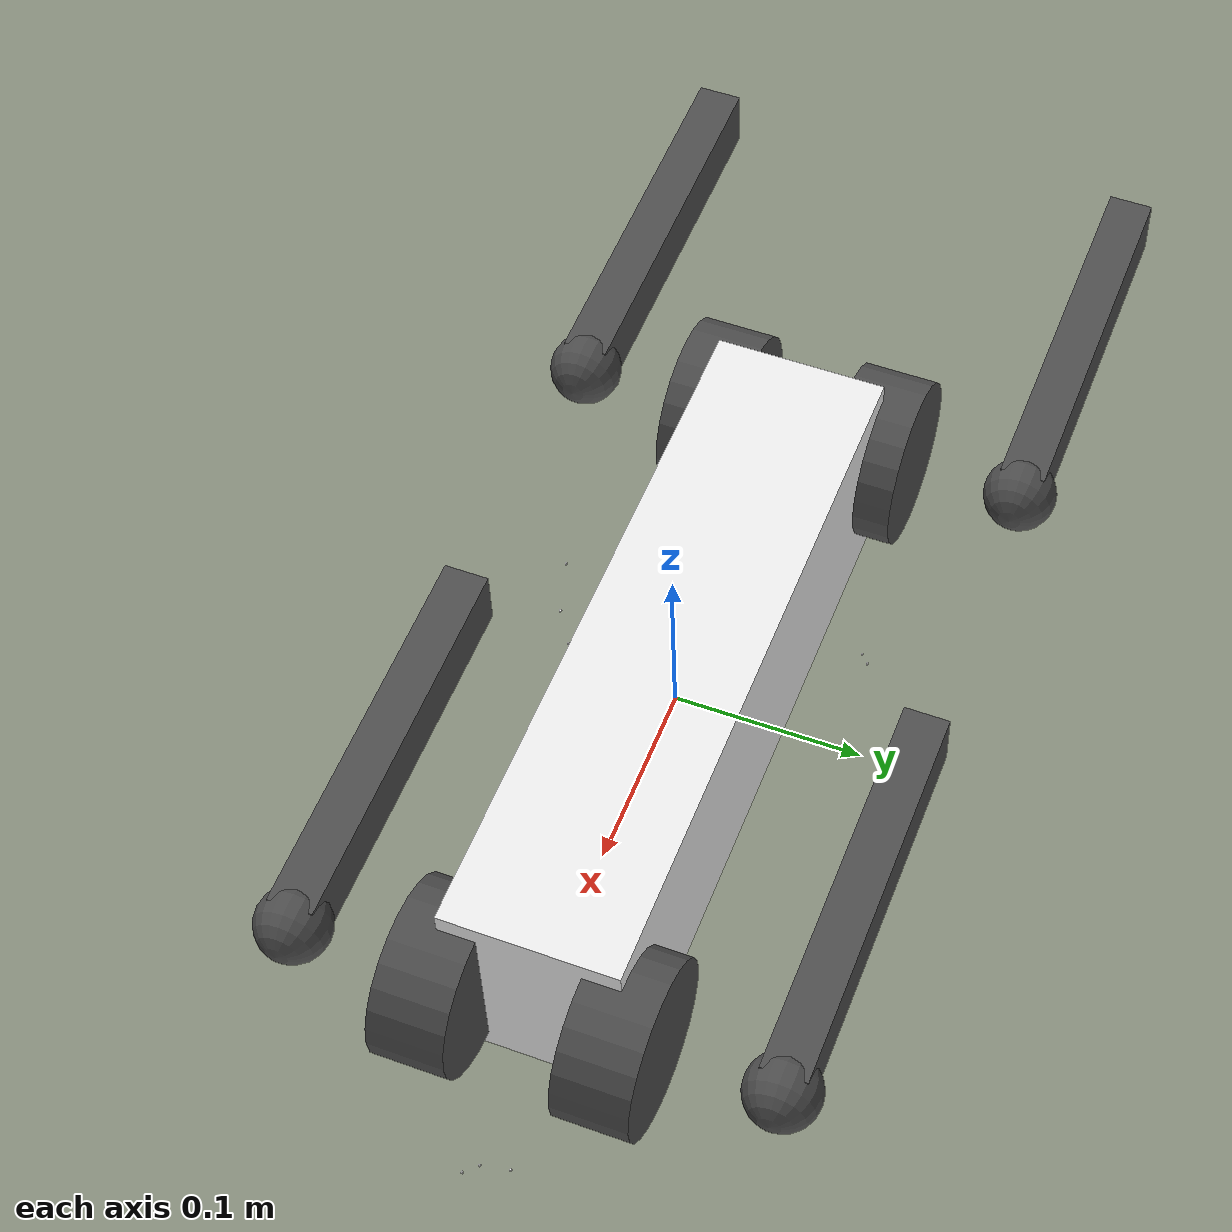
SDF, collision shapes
<sdf version='1.6'>
  <model name='go1_description'>
    <link name='body'>
      <pose frame=''>0 0 0 0 -0 0</pose>
      <inertial>
        <pose frame=''>0.022293 0.001987 -0.000501 0 -0 0</pose>
        <mass>5.20508</mass>
        <inertia>
          <ixx>0.0169483</ixx>
          <ixy>0.000460972</ixy>
          <ixz>0.000236597</ixz>
          <iyy>0.0657188</iyy>
          <iyz>3.62889e-05</iyz>
          <izz>0.0743887</izz>
        </inertia>
      </inertial>
      <collision name='body_collision_collision'>
        <pose frame=''>0 0 0 0 -0 0</pose>
        <geometry>
          <box>
            <size>0.3762 0.0935 0.114</size>
          </box>
        </geometry>
        <surface>
          <contact>
            <ode/>
          </contact>
          <friction>
            <ode/>
          </friction>
        </surface>
      </collision>
      <collision name='body_fixed_joint_lump__camera_chin_collision_1'>
        <pose frame=''>0.2522 0.0125 -0.0436 3.14159 1.57079 3e-06</pose>
        <geometry>
          <box>
            <size>0.001 0.001 0.001</size>
          </box>
        </geometry>
        <surface>
          <contact>
            <ode/>
          </contact>
          <friction>
            <ode/>
          </friction>
        </surface>
      </collision>
      <collision name='body_fixed_joint_lump__camera_face_collision_2'>
        <pose frame=''>0.2785 0.0125 0.0167 -3.14159 -0 0</pose>
        <geometry>
          <box>
            <size>0.001 0.001 0.001</size>
          </box>
        </geometry>
        <surface>
          <contact>
            <ode/>
          </contact>
          <friction>
            <ode/>
          </friction>
        </surface>
      </collision>
      <collision name='body_fixed_joint_lump__camera_left_collision_3'>
        <pose frame=''>-0.066 0.082 -0.0176 -3.14159 0.2618 1.5708</pose>
        <geometry>
          <box>
            <size>0.001 0.001 0.001</size>
          </box>
        </geometry>
        <surface>
          <contact>
            <ode/>
          </contact>
          <friction>
            <ode/>
          </friction>
        </surface>
      </collision>
      <collision name='body_fixed_joint_lump__camera_rearDown_collision_4'>
        <pose frame=''>-0.0825 0.0125 -0.04365 3.14159 1.57079 3e-06</pose>
        <geometry>
          <box>
            <size>0.001 0.001 0.001</size>
          </box>
        </geometry>
        <surface>
          <contact>
            <ode/>
          </contact>
          <friction>
            <ode/>
          </friction>
        </surface>
      </collision>
      <collision name='body_fixed_joint_lump__camera_right_collision_5'>
        <pose frame=''>-0.041 -0.082 -0.0176 -3.14159 0.2618 -1.5708</pose>
        <geometry>
          <box>
            <size>0.001 0.001 0.001</size>
          </box>
        </geometry>
        <surface>
          <contact>
            <ode/>
          </contact>
          <friction>
            <ode/>
          </friction>
        </surface>
      </collision>
      <collision name='body_fixed_joint_lump__imu_link_collision_6'>
        <pose frame=''>-0.01592 -0.06659 -0.00617 0 -0 0</pose>
        <geometry>
          <box>
            <size>0.001 0.001 0.001</size>
          </box>
        </geometry>
        <surface>
          <contact>
            <ode/>
          </contact>
          <friction>
            <ode>
              <mu>0.2</mu>
              <mu2>0.2</mu2>
            </ode>
          </friction>
        </surface>
      </collision>
      <collision name='body_fixed_joint_lump__ultraSound_face_collision_7'>
        <pose frame=''>0.2747 0 -0.0088 0 -0 0</pose>
        <geometry>
          <box>
            <size>0.001 0.001 0.001</size>
          </box>
        </geometry>
      </collision>
      <collision name='body_fixed_joint_lump__ultraSound_left_collision_8'>
        <pose frame=''>-0.0535 0.0826 0.00868 0 0.2618 1.5708</pose>
        <geometry>
          <box>
            <size>0.001 0.001 0.001</size>
          </box>
        </geometry>
      </collision>
      <collision name='body_fixed_joint_lump__ultraSound_right_collision_9'>
        <pose frame=''>-0.0535 -0.0826 0.00868 0 0.2618 -1.5708</pose>
        <geometry>
          <box>
            <size>0.001 0.001 0.001</size>
          </box>
        </geometry>
      </collision>
      <visual name='body_visual'>
        <pose frame=''>0 0 0 0 -0 0</pose>
        <geometry>
          <box>
            <size>0.001 0.001 0.001</size>
          </box>
        </geometry>
        <material>
          <script>
            <name>Gazebo/White</name>
            <uri>file://media/materials/scripts/gazebo.material</uri>
          </script>
        </material>
      </visual>
      <visual name='body_visual_visual_1'>
        <pose frame=''>0 0 0 0 -0 0</pose>
        <geometry>
          <mesh>
            <scale>1 1 1</scale>
            <uri>model://go1_description/meshes/trunk.dae</uri>
          </mesh>
        </geometry>
        <material>
          <script>
            <name>Gazebo/White</name>
            <uri>file://media/materials/scripts/gazebo.material</uri>
          </script>
        </material>
      </visual>
      <visual name='body_fixed_joint_lump__camera_chin_visual_2'>
        <pose frame=''>0.2522 0.0125 -0.0436 3.14159 1.57079 3e-06</pose>
        <geometry>
          <mesh>
            <scale>1 1 1</scale>
            <uri>model://go1_description/meshes/depthCamera.dae</uri>
          </mesh>
        </geometry>
        <material>
          <script>
            <uri>__default__</uri>
            <name>__default__</name>
          </script>
        </material>
      </visual>
      <visual name='body_fixed_joint_lump__camera_face_visual_3'>
        <pose frame=''>0.2785 0.0125 0.0167 -3.14159 -0 0</pose>
        <geometry>
          <mesh>
            <scale>1 1 1</scale>
            <uri>model://go1_description/meshes/depthCamera.dae</uri>
          </mesh>
        </geometry>
        <material>
          <script>
            <uri>__default__</uri>
            <name>__default__</name>
          </script>
        </material>
      </visual>
      <visual name='body_fixed_joint_lump__camera_left_visual_4'>
        <pose frame=''>-0.066 0.082 -0.0176 -3.14159 0.2618 1.5708</pose>
        <geometry>
          <mesh>
            <scale>1 1 1</scale>
            <uri>model://go1_description/meshes/depthCamera.dae</uri>
          </mesh>
        </geometry>
        <material>
          <script>
            <uri>__default__</uri>
            <name>__default__</name>
          </script>
        </material>
      </visual>
      <visual name='body_fixed_joint_lump__camera_rearDown_visual_5'>
        <pose frame=''>-0.0825 0.0125 -0.04365 3.14159 1.57079 3e-06</pose>
        <geometry>
          <mesh>
            <scale>1 1 1</scale>
            <uri>model://go1_description/meshes/depthCamera.dae</uri>
          </mesh>
        </geometry>
        <material>
          <script>
            <uri>__default__</uri>
            <name>__default__</name>
          </script>
        </material>
      </visual>
      <visual name='body_fixed_joint_lump__camera_right_visual_6'>
        <pose frame=''>-0.041 -0.082 -0.0176 -3.14159 0.2618 -1.5708</pose>
        <geometry>
          <mesh>
            <scale>1 1 1</scale>
            <uri>model://go1_description/meshes/depthCamera.dae</uri>
          </mesh>
        </geometry>
        <material>
          <script>
            <uri>__default__</uri>
            <name>__default__</name>
          </script>
        </material>
      </visual>
      <visual name='body_fixed_joint_lump__imu_link_visual_7'>
        <pose frame=''>-0.01592 -0.06659 -0.00617 0 -0 0</pose>
        <geometry>
          <box>
            <size>0.001 0.001 0.001</size>
          </box>
        </geometry>
        <material>
          <script>
            <name>Gazebo/Red</name>
            <uri>file://media/materials/scripts/gazebo.material</uri>
          </script>
        </material>
      </visual>
      <visual name='body_fixed_joint_lump__ultraSound_face_visual_8'>
        <pose frame=''>0.2747 0 -0.0088 0 -0 0</pose>
        <geometry>
          <mesh>
            <scale>1 1 1</scale>
            <uri>model://go1_description/meshes/ultraSound.dae</uri>
          </mesh>
        </geometry>
      </visual>
      <visual name='body_fixed_joint_lump__ultraSound_left_visual_9'>
        <pose frame=''>-0.0535 0.0826 0.00868 0 0.2618 1.5708</pose>
        <geometry>
          <mesh>
            <scale>1 1 1</scale>
            <uri>model://go1_description/meshes/ultraSound.dae</uri>
          </mesh>
        </geometry>
      </visual>
      <visual name='body_fixed_joint_lump__ultraSound_right_visual_10'>
        <pose frame=''>-0.0535 -0.0826 0.00868 0 0.2618 -1.5708</pose>
        <geometry>
          <mesh>
            <scale>1 1 1</scale>
            <uri>model://go1_description/meshes/ultraSound.dae</uri>
          </mesh>
        </geometry>
      </visual>
      <velocity_decay/>
      <velocity_decay/>
      <velocity_decay/>
      <sensor name='camera_chin_camera' type='depth'>
        <update_rate>16</update_rate>
        <camera name='__default__'>
          <horizontal_fov>2.094</horizontal_fov>
          <image>
            <width>928</width>
            <height>800</height>
            <format>R8G8B8</format>
          </image>
          <clip>
            <near>0.1</near>
            <far>5</far>
          </clip>
        </camera>
        <plugin name='camera_chin_controller' filename='libgazebo_ros_openni_kinect.so'>
          <baseline>0.025</baseline>
          <alwaysOn>1</alwaysOn>
          <updateRate>0.0</updateRate>
          <cameraName>camera_chin_ir</cameraName>
          <imageTopicName>/camera_chin/color/image_raw</imageTopicName>
          <cameraInfoTopicName>/camera_chin/color/camera_info</cameraInfoTopicName>
          <depthImageTopicName>/camera_chin/depth/image_raw</depthImageTopicName>
          <depthImageInfoTopicName>/camera_chin/depth/camera_info</depthImageInfoTopicName>
          <pointCloudTopicName>/cam2/point_cloud_chin</pointCloudTopicName>
          <frameName>camera_optical_chin</frameName>
          <pointCloudCutoff>0.1</pointCloudCutoff>
          <pointCloudCutoffMax>1.5</pointCloudCutoffMax>
          <distortionK1>0.0</distortionK1>
          <distortionK2>0.0</distortionK2>
          <distortionK3>0.0</distortionK3>
          <distortionT1>0.0</distortionT1>
          <distortionT2>0.0</distortionT2>
          <CxPrime>0</CxPrime>
          <Cx>0.0045</Cx>
          <Cy>0.0039</Cy>
          <focalLength>0</focalLength>
          <hackBaseline>0</hackBaseline>
        </plugin>
        <pose frame=''>0.2522 0.0125 -0.0436 3.14159 1.57079 3e-06</pose>
      </sensor>
      <velocity_decay/>
      <sensor name='camera_face_camera' type='depth'>
        <update_rate>16</update_rate>
        <camera name='__default__'>
          <horizontal_fov>2.094</horizontal_fov>
          <image>
            <width>928</width>
            <height>800</height>
            <format>R8G8B8</format>
          </image>
          <clip>
            <near>0.1</near>
            <far>5</far>
          </clip>
        </camera>
        <plugin name='camera_face_controller' filename='libgazebo_ros_openni_kinect.so'>
          <baseline>0.025</baseline>
          <alwaysOn>1</alwaysOn>
          <updateRate>0.0</updateRate>
          <cameraName>camera_face_ir</cameraName>
          <imageTopicName>/camera_face/color/image_raw</imageTopicName>
          <cameraInfoTopicName>/camera_face/color/camera_info</cameraInfoTopicName>
          <depthImageTopicName>/camera_face/depth/image_raw</depthImageTopicName>
          <depthImageInfoTopicName>/camera_face/depth/camera_info</depthImageInfoTopicName>
          <pointCloudTopicName>/cam1/point_cloud_face</pointCloudTopicName>
          <frameName>camera_optical_face</frameName>
          <pointCloudCutoff>0.1</pointCloudCutoff>
          <pointCloudCutoffMax>1.5</pointCloudCutoffMax>
          <distortionK1>0.0</distortionK1>
          <distortionK2>0.0</distortionK2>
          <distortionK3>0.0</distortionK3>
          <distortionT1>0.0</distortionT1>
          <distortionT2>0.0</distortionT2>
          <CxPrime>0</CxPrime>
          <Cx>0.0045</Cx>
          <Cy>0.0039</Cy>
          <focalLength>0</focalLength>
          <hackBaseline>0</hackBaseline>
        </plugin>
        <pose frame=''>0.2785 0.0125 0.0167 -3.14159 -0 0</pose>
      </sensor>
      <velocity_decay/>
      <sensor name='camera_left_camera' type='depth'>
        <update_rate>16</update_rate>
        <camera name='__default__'>
          <horizontal_fov>2.094</horizontal_fov>
          <image>
            <width>928</width>
            <height>800</height>
            <format>R8G8B8</format>
          </image>
          <clip>
            <near>0.1</near>
            <far>5</far>
          </clip>
        </camera>
        <plugin name='camera_left_controller' filename='libgazebo_ros_openni_kinect.so'>
          <baseline>0.025</baseline>
          <alwaysOn>1</alwaysOn>
          <updateRate>0.0</updateRate>
          <cameraName>camera_left_ir</cameraName>
          <imageTopicName>/camera_left/color/image_raw</imageTopicName>
          <cameraInfoTopicName>/camera_left/color/camera_info</cameraInfoTopicName>
          <depthImageTopicName>/camera_left/depth/image_raw</depthImageTopicName>
          <depthImageInfoTopicName>/camera_left/depth/camera_info</depthImageInfoTopicName>
          <pointCloudTopicName>/cam3/point_cloud_left</pointCloudTopicName>
          <frameName>camera_optical_left</frameName>
          <pointCloudCutoff>0.1</pointCloudCutoff>
          <pointCloudCutoffMax>1.5</pointCloudCutoffMax>
          <distortionK1>0.0</distortionK1>
          <distortionK2>0.0</distortionK2>
          <distortionK3>0.0</distortionK3>
          <distortionT1>0.0</distortionT1>
          <distortionT2>0.0</distortionT2>
          <CxPrime>0</CxPrime>
          <Cx>0.0045</Cx>
          <Cy>0.0039</Cy>
          <focalLength>0</focalLength>
          <hackBaseline>0</hackBaseline>
        </plugin>
        <pose frame=''>-0.066 0.082 -0.0176 -3.14159 0.2618 1.5708</pose>
      </sensor>
      <velocity_decay/>
      <sensor name='camera_rearDown_camera' type='depth'>
        <update_rate>16</update_rate>
        <camera name='__default__'>
          <horizontal_fov>2.094</horizontal_fov>
          <image>
            <width>928</width>
            <height>800</height>
            <format>R8G8B8</format>
          </image>
          <clip>
            <near>0.1</near>
            <far>5</far>
          </clip>
        </camera>
        <plugin name='camera_rearDown_controller' filename='libgazebo_ros_openni_kinect.so'>
          <baseline>0.025</baseline>
          <alwaysOn>1</alwaysOn>
          <updateRate>0.0</updateRate>
          <cameraName>camera_rearDown_ir</cameraName>
          <imageTopicName>/camera_rearDown/color/image_raw</imageTopicName>
          <cameraInfoTopicName>/camera_rearDown/color/camera_info</cameraInfoTopicName>
          <depthImageTopicName>/camera_rearDown/depth/image_raw</depthImageTopicName>
          <depthImageInfoTopicName>/camera_rearDown/depth/camera_info</depthImageInfoTopicName>
          <pointCloudTopicName>/cam5/point_cloud_rearDown</pointCloudTopicName>
          <frameName>camera_optical_rearDown</frameName>
          <pointCloudCutoff>0.1</pointCloudCutoff>
          <pointCloudCutoffMax>1.5</pointCloudCutoffMax>
          <distortionK1>0.0</distortionK1>
          <distortionK2>0.0</distortionK2>
          <distortionK3>0.0</distortionK3>
          <distortionT1>0.0</distortionT1>
          <distortionT2>0.0</distortionT2>
          <CxPrime>0</CxPrime>
          <Cx>0.0045</Cx>
          <Cy>0.0039</Cy>
          <focalLength>0</focalLength>
          <hackBaseline>0</hackBaseline>
        </plugin>
        <pose frame=''>-0.0825 0.0125 -0.04365 3.14159 1.57079 3e-06</pose>
      </sensor>
      <velocity_decay/>
      <sensor name='camera_right_camera' type='depth'>
        <update_rate>16</update_rate>
        <camera name='__default__'>
          <horizontal_fov>2.094</horizontal_fov>
          <image>
            <width>928</width>
            <height>800</height>
            <format>R8G8B8</format>
          </image>
          <clip>
            <near>0.1</near>
            <far>5</far>
          </clip>
        </camera>
        <plugin name='camera_right_controller' filename='libgazebo_ros_openni_kinect.so'>
          <baseline>0.025</baseline>
          <alwaysOn>1</alwaysOn>
          <updateRate>0.0</updateRate>
          <cameraName>camera_right_ir</cameraName>
          <imageTopicName>/camera_right/color/image_raw</imageTopicName>
          <cameraInfoTopicName>/camera_right/color/camera_info</cameraInfoTopicName>
          <depthImageTopicName>/camera_right/depth/image_raw</depthImageTopicName>
          <depthImageInfoTopicName>/camera_right/depth/camera_info</depthImageInfoTopicName>
          <pointCloudTopicName>/cam4/point_cloud_right</pointCloudTopicName>
          <frameName>camera_optical_right</frameName>
          <pointCloudCutoff>0.1</pointCloudCutoff>
          <pointCloudCutoffMax>1.5</pointCloudCutoffMax>
          <distortionK1>0.0</distortionK1>
          <distortionK2>0.0</distortionK2>
          <distortionK3>0.0</distortionK3>
          <distortionT1>0.0</distortionT1>
          <distortionT2>0.0</distortionT2>
          <CxPrime>0</CxPrime>
          <Cx>0.0045</Cx>
          <Cy>0.0039</Cy>
          <focalLength>0</focalLength>
          <hackBaseline>0</hackBaseline>
        </plugin>
        <pose frame=''>-0.041 -0.082 -0.0176 -3.14159 0.2618 -1.5708</pose>
      </sensor>
      <velocity_decay/>
      <gravity>1</gravity>
      <sensor name='imu_sensor' type='imu'>
        <always_on>1</always_on>
        <update_rate>1000</update_rate>
        <visualize>1</visualize>
        <topic>__default_topic__</topic>
        <plugin name='imu_plugin' filename='libgazebo_ros_imu_sensor.so'>
          <topicName>trunk_imu</topicName>
          <bodyName>imu_link</bodyName>
          <updateRateHZ>1000.0</updateRateHZ>
          <gaussianNoise>0.0</gaussianNoise>
          <xyzOffset>0 0 0</xyzOffset>
          <rpyOffset>0 0 0</rpyOffset>
          <frameName>imu_link</frameName>
        </plugin>
        <pose frame=''>-0.01592 -0.06659 -0.00617 0 -0 0</pose>
      </sensor>
      <gravity>1</gravity>
      <velocity_decay/>
    </link>
    <link name='hip2'>
      <pose frame=''>0.1881 -0.04675 0 0 -0 0</pose>
      <inertial>
        <pose frame=''>-0.00541 0.00074 6e-06 0 -0 0</pose>
        <mass>0.591</mass>
        <inertia>
          <ixx>0.000374268</ixx>
          <ixy>-3.68444e-05</ixy>
          <ixz>-9.86754e-07</ixz>
          <iyy>0.000635924</iyy>
          <iyz>1.17289e-06</iyz>
          <izz>0.000457647</izz>
        </inertia>
      </inertial>
      <collision name='hip2_collision_collision'>
        <pose frame=''>0 0 0 1.5708 -0 0</pose>
        <geometry>
          <cylinder>
            <length>0.04</length>
            <radius>0.046</radius>
          </cylinder>
        </geometry>
        <surface>
          <contact>
            <ode/>
          </contact>
          <friction>
            <ode>
              <mu>0.2</mu>
              <mu2>0.2</mu2>
            </ode>
          </friction>
        </surface>
      </collision>
      <visual name='hip2_visual_visual'>
        <pose frame=''>0 0 0 -3.14159 -0 0</pose>
        <geometry>
          <mesh>
            <scale>1 1 1</scale>
            <uri>model://go1_description/meshes/hip.dae</uri>
          </mesh>
        </geometry>
        <material>
          <script>
            <name>Gazebo/DarkGrey</name>
            <uri>file://media/materials/scripts/gazebo.material</uri>
          </script>
        </material>
      </visual>
      <gravity>1</gravity>
      <velocity_decay/>
    </link>
    <joint name='10' type='revolute'>
      <child>hip2</child>
      <parent>body</parent>
      <axis>
        <xyz>1 0 0</xyz>
        <limit>
          <lower>-1.0472</lower>
          <upper>1.0472</upper>
          <effort>23.7</effort>
          <velocity>30.1</velocity>
        </limit>
        <dynamics>
          <damping>0.01</damping>
          <friction>0.2</friction>
          <spring_reference>0</spring_reference>
          <spring_stiffness>0</spring_stiffness>
        </dynamics>
        <use_parent_model_frame>0</use_parent_model_frame>
      </axis>
    </joint>
    <link name='upper2'>
      <pose frame=''>0.1881 -0.12675 0 3.14159 1.57079 3.14159</pose>
      <inertial>
        <pose frame=''>-0.003468 0.018947 -0.032736 0 -0 0</pose>
        <mass>0.92</mass>
        <inertia>
          <ixx>0.00585156</ixx>
          <ixy>-1.78328e-06</ixy>
          <ixz>0.000328291</ixz>
          <iyy>0.00559616</iyy>
          <iyz>-2.14307e-05</iyz>
          <izz>0.00107157</izz>
        </inertia>
      </inertial>
      <collision name='upper2_collision_collision'>
        <pose frame=''>0 0 -0.1065 3.14159 1.57079 3.14159</pose>
        <geometry>
          <box>
            <size>0.213 0.0245 0.034</size>
          </box>
        </geometry>
        <surface>
          <contact>
            <ode>
              <kp>1e+06</kp>
              <kd>1</kd>
            </ode>
          </contact>
          <friction>
            <ode>
              <mu>0.2</mu>
              <mu2>0.2</mu2>
            </ode>
          </friction>
        </surface>
      </collision>
      <visual name='upper2_visual_visual'>
        <pose frame=''>0 0 0 0 -0 0</pose>
        <geometry>
          <mesh>
            <scale>1 1 1</scale>
            <uri>model://go1_description/meshes/thigh_mirror.dae</uri>
          </mesh>
        </geometry>
        <material>
          <script>
            <name>Gazebo/DarkGrey</name>
            <uri>file://media/materials/scripts/gazebo.material</uri>
          </script>
        </material>
      </visual>
      <gravity>1</gravity>
      <velocity_decay/>
      <self_collide>0</self_collide>
    </link>
    <joint name='4' type='revolute'>
      <child>upper2</child>
      <parent>hip2</parent>
      <axis>
        <xyz>0 -1 0</xyz>
        <limit>
          <lower>-6.28319</lower>
          <upper>6.28319</upper>
          <effort>23.7</effort>
          <velocity>30.1</velocity>
        </limit>
        <dynamics>
          <damping>0.01</damping>
          <friction>0.2</friction>
          <spring_reference>0</spring_reference>
          <spring_stiffness>0</spring_stiffness>
        </dynamics>
        <use_parent_model_frame>0</use_parent_model_frame>
      </axis>
    </joint>
    <link name='lower2'>
      <pose frame=''>-0.0249 -0.12675 -0 3.14159 -1.57079 3.14159</pose>
      <inertial>
        <pose frame=''>0.006286 0.001307 -0.122269 0 -0 0</pose>
        <mass>0.131</mass>
        <inertia>
          <ixx>0.00293919</ixx>
          <ixy>1.4409e-06</ixy>
          <ixz>-0.00010536</ixz>
          <iyy>0.00295577</iyy>
          <iyz>-2.43978e-05</iyz>
          <izz>3.02734e-05</izz>
        </inertia>
      </inertial>
      <collision name='lower2_collision_collision'>
        <pose frame=''>0 0 -0.1065 3.14159 1.57079 3.14159</pose>
        <geometry>
          <box>
            <size>0.213 0.016 0.016</size>
          </box>
        </geometry>
        <surface>
          <contact>
            <ode/>
          </contact>
          <friction>
            <ode>
              <mu>0.2</mu>
              <mu2>0.2</mu2>
            </ode>
          </friction>
        </surface>
      </collision>
      <visual name='lower2_visual_visual'>
        <pose frame=''>0 0 0 0 -0 0</pose>
        <geometry>
          <mesh>
            <scale>1 1 1</scale>
            <uri>model://go1_description/meshes/calf.dae</uri>
          </mesh>
        </geometry>
        <material>
          <script>
            <uri>__default__</uri>
            <name>__default__</name>
          </script>
        </material>
      </visual>
      <gravity>1</gravity>
      <velocity_decay/>
      <self_collide>0</self_collide>
    </link>
    <joint name='5' type='revolute'>
      <child>lower2</child>
      <parent>upper2</parent>
      <axis>
        <xyz>0 1 0</xyz>
        <limit>
          <lower>-6.28319</lower>
          <upper>6.28319</upper>
          <effort>23.7</effort>
          <velocity>30.1</velocity>
        </limit>
        <dynamics>
          <damping>0.01</damping>
          <friction>0.2</friction>
          <spring_reference>0</spring_reference>
          <spring_stiffness>0</spring_stiffness>
        </dynamics>
        <use_parent_model_frame>0</use_parent_model_frame>
      </axis>
    </joint>
    <link name='toe2'>
      <pose frame=''>0.1881 -0.12675 0 3.14159 -1.57079 3.14159</pose>
      <inertial>
        <pose frame=''>0 0 0 0 -0 0</pose>
        <mass>0.06</mass>
        <inertia>
          <ixx>9.6e-06</ixx>
          <ixy>0</ixy>
          <ixz>0</ixz>
          <iyy>9.6e-06</iyy>
          <iyz>0</iyz>
          <izz>9.6e-06</izz>
        </inertia>
      </inertial>
      <collision name='toe2_collision_collision'>
        <pose frame=''>0 0 0 0 -0 0</pose>
        <geometry>
          <sphere>
            <radius>0.02</radius>
          </sphere>
        </geometry>
        <surface>
          <contact>
            <ode>
              <kp>1e+06</kp>
              <kd>1</kd>
            </ode>
          </contact>
          <friction>
            <ode>
              <mu>0.6</mu>
              <mu2>0.6</mu2>
            </ode>
          </friction>
        </surface>
      </collision>
      <visual name='toe2_visual_visual'>
        <pose frame=''>0 0 0 0 -0 0</pose>
        <geometry>
          <sphere>
            <radius>0.01</radius>
          </sphere>
        </geometry>
        <material>
          <script>
            <name>Gazebo/DarkGrey</name>
            <uri>file://media/materials/scripts/gazebo.material</uri>
          </script>
        </material>
      </visual>
      <velocity_decay/>
      <sensor name='toe2_contact' type='contact'>
        <plugin name='toe2_plugin' filename='libgazebo_ros_bumper.so'>
          <alwaysOn>1</alwaysOn>
          <updateRate>500</updateRate>
          <bumperTopicName>gazebo/toe2_contact_state</bumperTopicName>
          <frameName>world</frameName>
        </plugin>
        <contact>
          <collision>toe2_collision</collision>
          <topic>__default_topic__</topic>
        </contact>
        <update_rate>500</update_rate>
      </sensor>
      <gravity>1</gravity>
      <velocity_decay/>
      <self_collide>0</self_collide>
    </link>
    <joint name='jtoe2' type='fixed'>
      <child>toe2</child>
      <parent>lower2</parent>
      <axis>
        <dynamics>
          <spring_reference>0</spring_reference>
          <spring_stiffness>0</spring_stiffness>
        </dynamics>
        <xyz>0 0 1</xyz>
        <use_parent_model_frame>0</use_parent_model_frame>
        <limit>
          <lower>-1e+16</lower>
          <upper>1e+16</upper>
        </limit>
      </axis>
      <physics>
        <ode>
          <limit>
            <cfm>0</cfm>
            <erp>0.2</erp>
          </limit>
        </ode>
      </physics>
    </joint>
    <link name='hip3'>
      <pose frame=''>-0.1881 -0.04675 0 0 -0 0</pose>
      <inertial>
        <pose frame=''>0.00541 0.00074 6e-06 0 -0 0</pose>
        <mass>0.591</mass>
        <inertia>
          <ixx>0.000374268</ixx>
          <ixy>3.68444e-05</ixy>
          <ixz>9.86754e-07</ixz>
          <iyy>0.000635924</iyy>
          <iyz>1.17289e-06</iyz>
          <izz>0.000457647</izz>
        </inertia>
      </inertial>
      <collision name='hip3_collision_collision'>
        <pose frame=''>0 0 0 1.5708 -0 0</pose>
        <geometry>
          <cylinder>
            <length>0.04</length>
            <radius>0.046</radius>
          </cylinder>
        </geometry>
        <surface>
          <contact>
            <ode/>
          </contact>
          <friction>
            <ode>
              <mu>0.2</mu>
              <mu2>0.2</mu2>
            </ode>
          </friction>
        </surface>
      </collision>
      <visual name='hip3_visual_visual'>
        <pose frame=''>0 0 0 0 -0 3.14159</pose>
        <geometry>
          <mesh>
            <scale>1 1 1</scale>
            <uri>model://go1_description/meshes/hip.dae</uri>
          </mesh>
        </geometry>
        <material>
          <script>
            <name>Gazebo/DarkGrey</name>
            <uri>file://media/materials/scripts/gazebo.material</uri>
          </script>
        </material>
      </visual>
      <gravity>1</gravity>
      <velocity_decay/>
    </link>
    <joint name='11' type='revolute'>
      <child>hip3</child>
      <parent>body</parent>
      <axis>
        <xyz>1 0 0</xyz>
        <limit>
          <lower>-1.0472</lower>
          <upper>1.0472</upper>
          <effort>23.7</effort>
          <velocity>30.1</velocity>
        </limit>
        <dynamics>
          <damping>0.01</damping>
          <friction>0.2</friction>
          <spring_reference>0</spring_reference>
          <spring_stiffness>0</spring_stiffness>
        </dynamics>
        <use_parent_model_frame>0</use_parent_model_frame>
      </axis>
    </joint>
    <link name='upper3'>
      <pose frame=''>-0.1881 -0.12675 0 3.14159 1.57079 3.14159</pose>
      <inertial>
        <pose frame=''>-0.003468 0.018947 -0.032736 0 -0 0</pose>
        <mass>0.92</mass>
        <inertia>
          <ixx>0.00585156</ixx>
          <ixy>-1.78328e-06</ixy>
          <ixz>0.000328291</ixz>
          <iyy>0.00559616</iyy>
          <iyz>-2.14307e-05</iyz>
          <izz>0.00107157</izz>
        </inertia>
      </inertial>
      <collision name='upper3_collision_collision'>
        <pose frame=''>0 0 -0.1065 3.14159 1.57079 3.14159</pose>
        <geometry>
          <box>
            <size>0.213 0.0245 0.034</size>
          </box>
        </geometry>
        <surface>
          <contact>
            <ode>
              <kp>1e+06</kp>
              <kd>1</kd>
            </ode>
          </contact>
          <friction>
            <ode>
              <mu>0.2</mu>
              <mu2>0.2</mu2>
            </ode>
          </friction>
        </surface>
      </collision>
      <visual name='upper3_visual_visual'>
        <pose frame=''>0 0 0 0 -0 0</pose>
        <geometry>
          <mesh>
            <scale>1 1 1</scale>
            <uri>model://go1_description/meshes/thigh_mirror.dae</uri>
          </mesh>
        </geometry>
        <material>
          <script>
            <name>Gazebo/DarkGrey</name>
            <uri>file://media/materials/scripts/gazebo.material</uri>
          </script>
        </material>
      </visual>
      <gravity>1</gravity>
      <velocity_decay/>
      <self_collide>0</self_collide>
    </link>
    <joint name='6' type='revolute'>
      <child>upper3</child>
      <parent>hip3</parent>
      <axis>
        <xyz>0 -1 0</xyz>
        <limit>
          <lower>-6.28319</lower>
          <upper>6.28319</upper>
          <effort>23.7</effort>
          <velocity>30.1</velocity>
        </limit>
        <dynamics>
          <damping>0.01</damping>
          <friction>0.2</friction>
          <spring_reference>0</spring_reference>
          <spring_stiffness>0</spring_stiffness>
        </dynamics>
        <use_parent_model_frame>0</use_parent_model_frame>
      </axis>
    </joint>
    <link name='lower3'>
      <pose frame=''>-0.4011 -0.12675 -0 3.14159 -1.57079 3.14159</pose>
      <inertial>
        <pose frame=''>0.006286 0.001307 -0.122269 0 -0 0</pose>
        <mass>0.131</mass>
        <inertia>
          <ixx>0.00293919</ixx>
          <ixy>1.4409e-06</ixy>
          <ixz>-0.00010536</ixz>
          <iyy>0.00295577</iyy>
          <iyz>-2.43978e-05</iyz>
          <izz>3.02734e-05</izz>
        </inertia>
      </inertial>
      <collision name='lower3_collision_collision'>
        <pose frame=''>0 0 -0.1065 3.14159 1.57079 3.14159</pose>
        <geometry>
          <box>
            <size>0.213 0.016 0.016</size>
          </box>
        </geometry>
        <surface>
          <contact>
            <ode/>
          </contact>
          <friction>
            <ode>
              <mu>0.2</mu>
              <mu2>0.2</mu2>
            </ode>
          </friction>
        </surface>
      </collision>
      <visual name='lower3_visual_visual'>
        <pose frame=''>0 0 0 0 -0 0</pose>
        <geometry>
          <mesh>
            <scale>1 1 1</scale>
            <uri>model://go1_description/meshes/calf.dae</uri>
          </mesh>
        </geometry>
        <material>
          <script>
            <uri>__default__</uri>
            <name>__default__</name>
          </script>
        </material>
      </visual>
      <gravity>1</gravity>
      <velocity_decay/>
      <self_collide>0</self_collide>
    </link>
    <joint name='7' type='revolute'>
      <child>lower3</child>
      <parent>upper3</parent>
      <axis>
        <xyz>0 1 0</xyz>
        <limit>
          <lower>-6.28319</lower>
          <upper>6.28319</upper>
          <effort>23.7</effort>
          <velocity>30.1</velocity>
        </limit>
        <dynamics>
          <damping>0.01</damping>
          <friction>0.2</friction>
          <spring_reference>0</spring_reference>
          <spring_stiffness>0</spring_stiffness>
        </dynamics>
        <use_parent_model_frame>0</use_parent_model_frame>
      </axis>
    </joint>
    <link name='toe3'>
      <pose frame=''>-0.1881 -0.12675 0 3.14159 -1.57079 3.14159</pose>
      <inertial>
        <pose frame=''>0 0 0 0 -0 0</pose>
        <mass>0.06</mass>
        <inertia>
          <ixx>9.6e-06</ixx>
          <ixy>0</ixy>
          <ixz>0</ixz>
          <iyy>9.6e-06</iyy>
          <iyz>0</iyz>
          <izz>9.6e-06</izz>
        </inertia>
      </inertial>
      <collision name='toe3_collision_collision'>
        <pose frame=''>0 0 0 0 -0 0</pose>
        <geometry>
          <sphere>
            <radius>0.02</radius>
          </sphere>
        </geometry>
        <surface>
          <contact>
            <ode>
              <kp>1e+06</kp>
              <kd>1</kd>
            </ode>
          </contact>
          <friction>
            <ode>
              <mu>0.6</mu>
              <mu2>0.6</mu2>
            </ode>
          </friction>
        </surface>
      </collision>
      <visual name='toe3_visual_visual'>
        <pose frame=''>0 0 0 0 -0 0</pose>
        <geometry>
          <sphere>
            <radius>0.01</radius>
          </sphere>
        </geometry>
        <material>
          <script>
            <name>Gazebo/DarkGrey</name>
            <uri>file://media/materials/scripts/gazebo.material</uri>
          </script>
        </material>
      </visual>
      <velocity_decay/>
      <sensor name='toe3_contact' type='contact'>
        <plugin name='toe3_plugin' filename='libgazebo_ros_bumper.so'>
          <alwaysOn>1</alwaysOn>
          <updateRate>500</updateRate>
          <bumperTopicName>gazebo/toe3_contact_state</bumperTopicName>
          <frameName>world</frameName>
        </plugin>
        <contact>
          <collision>toe3_collision</collision>
          <topic>__default_topic__</topic>
        </contact>
        <update_rate>500</update_rate>
      </sensor>
      <gravity>1</gravity>
      <velocity_decay/>
      <self_collide>0</self_collide>
    </link>
    <joint name='jtoe3' type='fixed'>
      <child>toe3</child>
      <parent>lower3</parent>
      <axis>
        <dynamics>
          <spring_reference>0</spring_reference>
          <spring_stiffness>0</spring_stiffness>
        </dynamics>
        <xyz>0 0 1</xyz>
        <use_parent_model_frame>0</use_parent_model_frame>
        <limit>
          <lower>-1e+16</lower>
          <upper>1e+16</upper>
        </limit>
      </axis>
      <physics>
        <ode>
          <limit>
            <cfm>0</cfm>
            <erp>0.2</erp>
          </limit>
        </ode>
      </physics>
    </joint>
    <link name='hip0'>
      <pose frame=''>0.1881 0.04675 0 0 -0 0</pose>
      <inertial>
        <pose frame=''>-0.00541 -0.00074 6e-06 0 -0 0</pose>
        <mass>0.591</mass>
        <inertia>
          <ixx>0.000374268</ixx>
          <ixy>3.68444e-05</ixy>
          <ixz>-9.86754e-07</ixz>
          <iyy>0.000635924</iyy>
          <iyz>-1.17289e-06</iyz>
          <izz>0.000457647</izz>
        </inertia>
      </inertial>
      <collision name='hip0_collision_collision'>
        <pose frame=''>0 0 0 1.5708 -0 0</pose>
        <geometry>
          <cylinder>
            <length>0.04</length>
            <radius>0.046</radius>
          </cylinder>
        </geometry>
        <surface>
          <contact>
            <ode/>
          </contact>
          <friction>
            <ode>
              <mu>0.2</mu>
              <mu2>0.2</mu2>
            </ode>
          </friction>
        </surface>
      </collision>
      <visual name='hip0_visual_visual'>
        <pose frame=''>0 0 0 0 -0 0</pose>
        <geometry>
          <mesh>
            <scale>1 1 1</scale>
            <uri>model://go1_description/meshes/hip.dae</uri>
          </mesh>
        </geometry>
        <material>
          <script>
            <name>Gazebo/DarkGrey</name>
            <uri>file://media/materials/scripts/gazebo.material</uri>
          </script>
        </material>
      </visual>
      <gravity>1</gravity>
      <velocity_decay/>
    </link>
    <joint name='8' type='revolute'>
      <child>hip0</child>
      <parent>body</parent>
      <axis>
        <xyz>1 0 0</xyz>
        <limit>
          <lower>-1.0472</lower>
          <upper>1.0472</upper>
          <effort>23.7</effort>
          <velocity>30.1</velocity>
        </limit>
        <dynamics>
          <damping>0.01</damping>
          <friction>0.2</friction>
          <spring_reference>0</spring_reference>
          <spring_stiffness>0</spring_stiffness>
        </dynamics>
        <use_parent_model_frame>0</use_parent_model_frame>
      </axis>
    </joint>
    <link name='upper0'>
      <pose frame=''>0.1881 0.12675 0 3.14159 1.57079 3.14159</pose>
      <inertial>
        <pose frame=''>-0.003468 -0.018947 -0.032736 0 -0 0</pose>
        <mass>0.92</mass>
        <inertia>
          <ixx>0.00585156</ixx>
          <ixy>1.78328e-06</ixy>
          <ixz>0.000328291</ixz>
          <iyy>0.00559616</iyy>
          <iyz>2.14307e-05</iyz>
          <izz>0.00107157</izz>
        </inertia>
      </inertial>
      <collision name='upper0_collision_collision'>
        <pose frame=''>0 0 -0.1065 3.14159 1.57079 3.14159</pose>
        <geometry>
          <box>
            <size>0.213 0.0245 0.034</size>
          </box>
        </geometry>
        <surface>
          <contact>
            <ode>
              <kp>1e+06</kp>
              <kd>1</kd>
            </ode>
          </contact>
          <friction>
            <ode>
              <mu>0.2</mu>
              <mu2>0.2</mu2>
            </ode>
          </friction>
        </surface>
      </collision>
      <visual name='upper0_visual_visual'>
        <pose frame=''>0 0 0 0 -0 0</pose>
        <geometry>
          <mesh>
            <scale>1 1 1</scale>
            <uri>model://go1_description/meshes/thigh.dae</uri>
          </mesh>
        </geometry>
        <material>
          <script>
            <name>Gazebo/DarkGrey</name>
            <uri>file://media/materials/scripts/gazebo.material</uri>
          </script>
        </material>
      </visual>
      <gravity>1</gravity>
      <velocity_decay/>
      <self_collide>0</self_collide>
    </link>
    <joint name='0' type='revolute'>
      <child>upper0</child>
      <parent>hip0</parent>
      <axis>
        <xyz>0 -1 0</xyz>
        <limit>
          <lower>-6.28319</lower>
          <upper>6.28319</upper>
          <effort>23.7</effort>
          <velocity>30.1</velocity>
        </limit>
        <dynamics>
          <damping>0.01</damping>
          <friction>0.2</friction>
          <spring_reference>0</spring_reference>
          <spring_stiffness>0</spring_stiffness>
        </dynamics>
        <use_parent_model_frame>0</use_parent_model_frame>
      </axis>
    </joint>
    <link name='lower0'>
      <pose frame=''>-0.0249 0.12675 -0 3.14159 -1.57079 3.14159</pose>
      <inertial>
        <pose frame=''>0.006286 0.001307 -0.122269 0 -0 0</pose>
        <mass>0.131</mass>
        <inertia>
          <ixx>0.00293919</ixx>
          <ixy>1.4409e-06</ixy>
          <ixz>-0.00010536</ixz>
          <iyy>0.00295577</iyy>
          <iyz>-2.43978e-05</iyz>
          <izz>3.02734e-05</izz>
        </inertia>
      </inertial>
      <collision name='lower0_collision_collision'>
        <pose frame=''>0 0 -0.1065 3.14159 1.57079 3.14159</pose>
        <geometry>
          <box>
            <size>0.213 0.016 0.016</size>
          </box>
        </geometry>
        <surface>
          <contact>
            <ode/>
          </contact>
          <friction>
            <ode>
              <mu>0.2</mu>
              <mu2>0.2</mu2>
            </ode>
          </friction>
        </surface>
      </collision>
      <visual name='lower0_visual_visual'>
        <pose frame=''>0 0 0 0 -0 0</pose>
        <geometry>
          <mesh>
            <scale>1 1 1</scale>
            <uri>model://go1_description/meshes/calf.dae</uri>
          </mesh>
        </geometry>
        <material>
          <script>
            <uri>__default__</uri>
            <name>__default__</name>
          </script>
        </material>
      </visual>
      <gravity>1</gravity>
      <velocity_decay/>
      <self_collide>0</self_collide>
    </link>
    <joint name='1' type='revolute'>
      <child>lower0</child>
      <parent>upper0</parent>
      <axis>
        <xyz>0 1 0</xyz>
        <limit>
          <lower>-6.28319</lower>
          <upper>6.28319</upper>
          <effort>23.7</effort>
          <velocity>30.1</velocity>
        </limit>
        <dynamics>
          <damping>0.01</damping>
          <friction>0.2</friction>
          <spring_reference>0</spring_reference>
          <spring_stiffness>0</spring_stiffness>
        </dynamics>
        <use_parent_model_frame>0</use_parent_model_frame>
      </axis>
    </joint>
    <link name='toe0'>
      <pose frame=''>0.1881 0.12675 0 3.14159 -1.57079 3.14159</pose>
      <inertial>
        <pose frame=''>0 0 0 0 -0 0</pose>
        <mass>0.06</mass>
        <inertia>
          <ixx>9.6e-06</ixx>
          <ixy>0</ixy>
          <ixz>0</ixz>
          <iyy>9.6e-06</iyy>
          <iyz>0</iyz>
          <izz>9.6e-06</izz>
        </inertia>
      </inertial>
      <collision name='toe0_collision_collision'>
        <pose frame=''>0 0 0 0 -0 0</pose>
        <geometry>
          <sphere>
            <radius>0.02</radius>
          </sphere>
        </geometry>
        <surface>
          <contact>
            <ode>
              <kp>1e+06</kp>
              <kd>1</kd>
            </ode>
          </contact>
          <friction>
            <ode>
              <mu>0.6</mu>
              <mu2>0.6</mu2>
            </ode>
          </friction>
        </surface>
      </collision>
      <visual name='toe0_visual_visual'>
        <pose frame=''>0 0 0 0 -0 0</pose>
        <geometry>
          <sphere>
            <radius>0.01</radius>
          </sphere>
        </geometry>
        <material>
          <script>
            <name>Gazebo/DarkGrey</name>
            <uri>file://media/materials/scripts/gazebo.material</uri>
          </script>
        </material>
      </visual>
      <velocity_decay/>
      <sensor name='toe0_contact' type='contact'>
        <plugin name='toe0_plugin' filename='libgazebo_ros_bumper.so'>
          <alwaysOn>1</alwaysOn>
          <updateRate>500</updateRate>
          <bumperTopicName>gazebo/toe0_contact_state</bumperTopicName>
          <frameName>world</frameName>
        </plugin>
        <contact>
          <collision>toe0_collision</collision>
          <topic>__default_topic__</topic>
        </contact>
        <update_rate>500</update_rate>
      </sensor>
      <gravity>1</gravity>
      <velocity_decay/>
      <self_collide>0</self_collide>
    </link>
    <joint name='jtoe0' type='fixed'>
      <child>toe0</child>
      <parent>lower0</parent>
      <axis>
        <dynamics>
          <spring_reference>0</spring_reference>
          <spring_stiffness>0</spring_stiffness>
        </dynamics>
        <xyz>0 0 1</xyz>
        <use_parent_model_frame>0</use_parent_model_frame>
        <limit>
          <lower>-1e+16</lower>
          <upper>1e+16</upper>
        </limit>
      </axis>
      <physics>
        <ode>
          <limit>
            <cfm>0</cfm>
            <erp>0.2</erp>
          </limit>
        </ode>
      </physics>
    </joint>
    <link name='hip1'>
      <pose frame=''>-0.1881 0.04675 0 0 -0 0</pose>
      <inertial>
        <pose frame=''>0.00541 -0.00074 6e-06 0 -0 0</pose>
        <mass>0.591</mass>
        <inertia>
          <ixx>0.000374268</ixx>
          <ixy>-3.68444e-05</ixy>
          <ixz>9.86754e-07</ixz>
          <iyy>0.000635924</iyy>
          <iyz>-1.17289e-06</iyz>
          <izz>0.000457647</izz>
        </inertia>
      </inertial>
      <collision name='hip1_collision_collision'>
        <pose frame=''>0 0 0 1.5708 -0 0</pose>
        <geometry>
          <cylinder>
            <length>0.04</length>
            <radius>0.046</radius>
          </cylinder>
        </geometry>
        <surface>
          <contact>
            <ode/>
          </contact>
          <friction>
            <ode>
              <mu>0.2</mu>
              <mu2>0.2</mu2>
            </ode>
          </friction>
        </surface>
      </collision>
      <visual name='hip1_visual_visual'>
        <pose frame=''>0 0 0 3.14159 -0 3.14159</pose>
        <geometry>
          <mesh>
            <scale>1 1 1</scale>
            <uri>model://go1_description/meshes/hip.dae</uri>
          </mesh>
        </geometry>
        <material>
          <script>
            <name>Gazebo/DarkGrey</name>
            <uri>file://media/materials/scripts/gazebo.material</uri>
          </script>
        </material>
      </visual>
      <gravity>1</gravity>
      <velocity_decay/>
    </link>
    <joint name='9' type='revolute'>
      <child>hip1</child>
      <parent>body</parent>
      <axis>
        <xyz>1 0 0</xyz>
        <limit>
          <lower>-1.0472</lower>
          <upper>1.0472</upper>
          <effort>23.7</effort>
          <velocity>30.1</velocity>
        </limit>
        <dynamics>
          <damping>0.01</damping>
          <friction>0.2</friction>
          <spring_reference>0</spring_reference>
          <spring_stiffness>0</spring_stiffness>
        </dynamics>
        <use_parent_model_frame>0</use_parent_model_frame>
      </axis>
    </joint>
    <link name='upper1'>
      <pose frame=''>-0.1881 0.12675 0 3.14159 1.57079 3.14159</pose>
      <inertial>
        <pose frame=''>-0.003468 -0.018947 -0.032736 0 -0 0</pose>
        <mass>0.92</mass>
        <inertia>
          <ixx>0.00585156</ixx>
          <ixy>1.78328e-06</ixy>
          <ixz>0.000328291</ixz>
          <iyy>0.00559616</iyy>
          <iyz>2.14307e-05</iyz>
          <izz>0.00107157</izz>
        </inertia>
      </inertial>
      <collision name='upper1_collision_collision'>
        <pose frame=''>0 0 -0.1065 3.14159 1.57079 3.14159</pose>
        <geometry>
          <box>
            <size>0.213 0.0245 0.034</size>
          </box>
        </geometry>
        <surface>
          <contact>
            <ode>
              <kp>1e+06</kp>
              <kd>1</kd>
            </ode>
          </contact>
          <friction>
            <ode>
              <mu>0.2</mu>
              <mu2>0.2</mu2>
            </ode>
          </friction>
        </surface>
      </collision>
      <visual name='upper1_visual_visual'>
        <pose frame=''>0 0 0 0 -0 0</pose>
        <geometry>
          <mesh>
            <scale>1 1 1</scale>
            <uri>model://go1_description/meshes/thigh.dae</uri>
          </mesh>
        </geometry>
        <material>
          <script>
            <name>Gazebo/DarkGrey</name>
            <uri>file://media/materials/scripts/gazebo.material</uri>
          </script>
        </material>
      </visual>
      <gravity>1</gravity>
      <velocity_decay/>
      <self_collide>0</self_collide>
    </link>
    <joint name='2' type='revolute'>
      <child>upper1</child>
      <parent>hip1</parent>
      <axis>
        <xyz>0 -1 0</xyz>
        <limit>
          <lower>-6.28319</lower>
          <upper>6.28319</upper>
          <effort>23.7</effort>
          <velocity>30.1</velocity>
        </limit>
        <dynamics>
          <damping>0.01</damping>
          <friction>0.2</friction>
          <spring_reference>0</spring_reference>
          <spring_stiffness>0</spring_stiffness>
        </dynamics>
        <use_parent_model_frame>0</use_parent_model_frame>
      </axis>
    </joint>
    <link name='lower1'>
      <pose frame=''>-0.4011 0.12675 -0 3.14159 -1.57079 3.14159</pose>
      <inertial>
        <pose frame=''>0.006286 0.001307 -0.122269 0 -0 0</pose>
        <mass>0.131</mass>
        <inertia>
          <ixx>0.00293919</ixx>
          <ixy>1.4409e-06</ixy>
          <ixz>-0.00010536</ixz>
          <iyy>0.00295577</iyy>
          <iyz>-2.43978e-05</iyz>
          <izz>3.02734e-05</izz>
        </inertia>
      </inertial>
      <collision name='lower1_collision_collision'>
        <pose frame=''>0 0 -0.1065 3.14159 1.57079 3.14159</pose>
        <geometry>
          <box>
            <size>0.213 0.016 0.016</size>
          </box>
        </geometry>
        <surface>
          <contact>
            <ode/>
          </contact>
          <friction>
            <ode>
              <mu>0.2</mu>
              <mu2>0.2</mu2>
            </ode>
          </friction>
        </surface>
      </collision>
      <visual name='lower1_visual_visual'>
        <pose frame=''>0 0 0 0 -0 0</pose>
        <geometry>
          <mesh>
            <scale>1 1 1</scale>
            <uri>model://go1_description/meshes/calf.dae</uri>
          </mesh>
        </geometry>
        <material>
          <script>
            <uri>__default__</uri>
            <name>__default__</name>
          </script>
        </material>
      </visual>
      <gravity>1</gravity>
      <velocity_decay/>
      <self_collide>0</self_collide>
    </link>
    <joint name='3' type='revolute'>
      <child>lower1</child>
      <parent>upper1</parent>
      <axis>
        <xyz>0 1 0</xyz>
        <limit>
          <lower>-6.28319</lower>
          <upper>6.28319</upper>
          <effort>23.7</effort>
          <velocity>30.1</velocity>
        </limit>
        <dynamics>
          <damping>0.01</damping>
          <friction>0.2</friction>
          <spring_reference>0</spring_reference>
          <spring_stiffness>0</spring_stiffness>
        </dynamics>
        <use_parent_model_frame>0</use_parent_model_frame>
      </axis>
    </joint>
    <link name='toe1'>
      <pose frame=''>-0.1881 0.12675 0 3.14159 -1.57079 3.14159</pose>
      <inertial>
        <pose frame=''>0 0 0 0 -0 0</pose>
        <mass>0.06</mass>
        <inertia>
          <ixx>9.6e-06</ixx>
          <ixy>0</ixy>
          <ixz>0</ixz>
          <iyy>9.6e-06</iyy>
          <iyz>0</iyz>
          <izz>9.6e-06</izz>
        </inertia>
      </inertial>
      <collision name='toe1_collision_collision'>
        <pose frame=''>0 0 0 0 -0 0</pose>
        <geometry>
          <sphere>
            <radius>0.02</radius>
          </sphere>
        </geometry>
        <surface>
          <contact>
            <ode>
              <kp>1e+06</kp>
              <kd>1</kd>
            </ode>
          </contact>
          <friction>
            <ode>
              <mu>0.6</mu>
              <mu2>0.6</mu2>
            </ode>
          </friction>
        </surface>
      </collision>
      <visual name='toe1_visual_visual'>
        <pose frame=''>0 0 0 0 -0 0</pose>
        <geometry>
          <sphere>
            <radius>0.01</radius>
          </sphere>
        </geometry>
        <material>
          <script>
            <name>Gazebo/DarkGrey</name>
            <uri>file://media/materials/scripts/gazebo.material</uri>
          </script>
        </material>
      </visual>
      <velocity_decay/>
      <sensor name='toe1_contact' type='contact'>
        <plugin name='toe1_plugin' filename='libgazebo_ros_bumper.so'>
          <alwaysOn>1</alwaysOn>
          <updateRate>500</updateRate>
          <bumperTopicName>gazebo/toe1_contact_state</bumperTopicName>
          <frameName>world</frameName>
        </plugin>
        <contact>
          <collision>toe1_collision</collision>
          <topic>__default_topic__</topic>
        </contact>
        <update_rate>500</update_rate>
      </sensor>
      <gravity>1</gravity>
      <velocity_decay/>
      <self_collide>0</self_collide>
    </link>
    <joint name='jtoe1' type='fixed'>
      <child>toe1</child>
      <parent>lower1</parent>
      <axis>
        <dynamics>
          <spring_reference>0</spring_reference>
          <spring_stiffness>0</spring_stiffness>
        </dynamics>
        <xyz>0 0 1</xyz>
        <use_parent_model_frame>0</use_parent_model_frame>
        <limit>
          <lower>-1e+16</lower>
          <upper>1e+16</upper>
        </limit>
      </axis>
      <physics>
        <ode>
          <limit>
            <cfm>0</cfm>
            <erp>0.2</erp>
          </limit>
        </ode>
      </physics>
    </joint>
    <plugin name='gazebo_ros_control' filename='libgazebo_ros_control.so'>
      <robotSimType>gazebo_ros_control/DefaultRobotHWSim</robotSimType>
    </plugin>
    <plugin name='ground_truth_estimator' filename='libground_truth_estimator.so'>
      <updateRateHZ>500.0</updateRateHZ>
    </plugin>
    <static>0</static>
    <plugin name='gazebo_ros_force' filename='libgazebo_ros_force.so'>
      <topicName>/apply_force/trunk</topicName>
      <bodyName>body</bodyName>
      <xyzOffset>0 0 0</xyzOffset>
      <rpyOffset>0 -0 0</rpyOffset>
    </plugin>
  </model>
</sdf>
